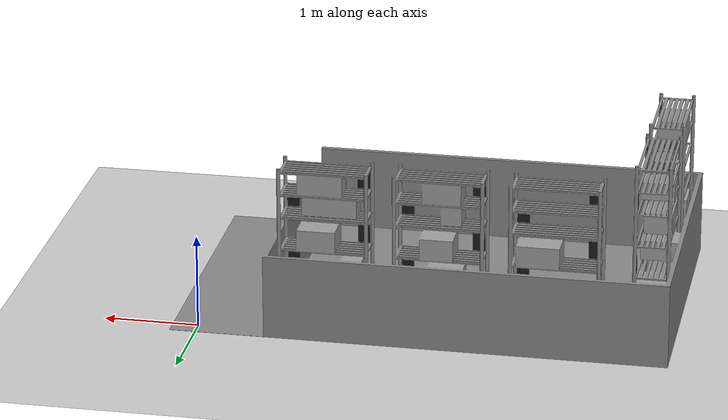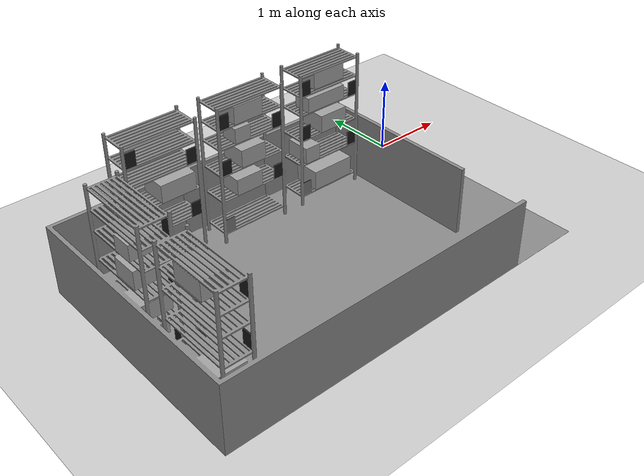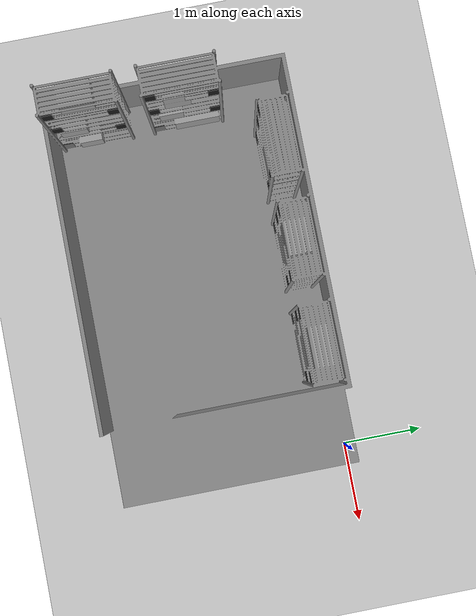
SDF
<?xml version="1.0" ?>
<sdf version="1.7">
  <world name="arena">
    <include>
      <uri>model://ground_plane</uri>
    </include>
    <include>
      <uri>model://sun</uri>
    </include>
    <model name="warehouse">
       <pose>0 0 0  -1.5708 0 1.5708</pose>
      <static>true</static>
      <link name="base">
        <visual name="visual">
          <geometry>
            <mesh><uri>file:///home/aech/ros2_ws/src/warehouse_bot/worlds/meshes/eternal.dae</uri></mesh>
          </geometry>
        </visual>
        <collision name="collision">
          <geometry>
            <mesh>
              <uri>file:///home/aech/ros2_ws/src/warehouse_bot/worlds/meshes/eternal.dae</uri>
            </mesh>
          </geometry>
        </collision>
      </link>

    </model>
  </world>
</sdf>
